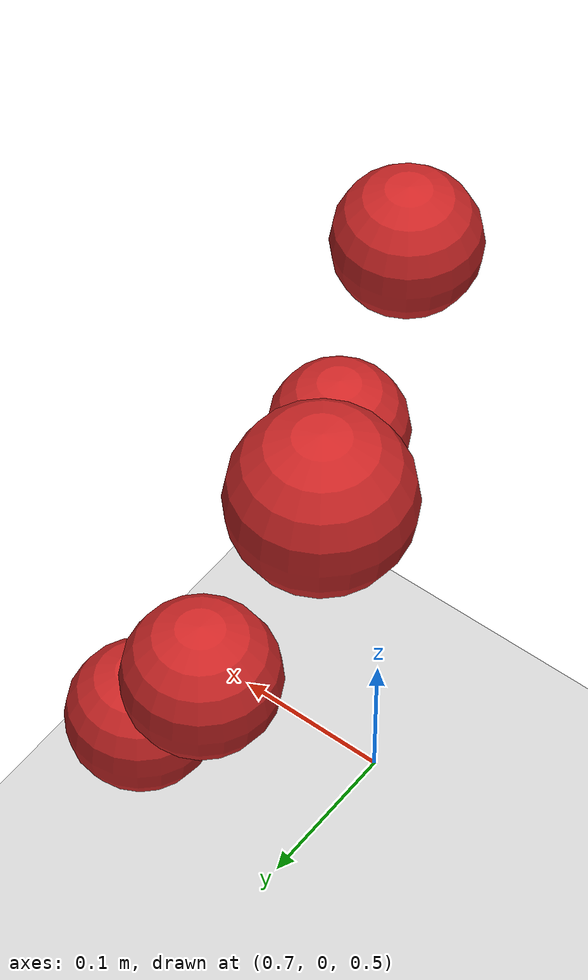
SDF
<sdf version="1.7">
 <world name="default">
  <light name="sun" type="directional">
   <pose>0 0 10 0 -0 0</pose>
   <diffuse>0.8 0.8 0.8 1</diffuse>
   <specular>0.2 0.2 0.2 1</specular>
   <attenuation>
    <range>1000</range>
    <constant>0.9</constant>
    <linear>0.01</linear>
    <quadratic>0.001</quadratic>
   </attenuation>
   <direction>-0.5 0.1 -0.9</direction>
   <spot><inner_angle>0</inner_angle><outer_angle>0</outer_angle><falloff>0</falloff></spot>
  </light>
  <model name="ground_plane">
   <static>1</static>
   <link name="link">
    <collision name="collision">
     <geometry><plane><normal>0 0 1</normal><size>100 100</size></plane></geometry>
     <surface>
      <contact><collide_bitmask>65535</collide_bitmask></contact>
      <friction><ode><mu>100</mu><mu2>50</mu2></ode></friction>
     </surface>
    </collision>
    <visual name="visual">
     <cast_shadows>0</cast_shadows>
     <geometry><plane><normal>0 0 1</normal><size>100 100</size></plane></geometry>
     <material>
      <script><uri>file://media/materials/scripts/gazebo.material</uri><name>Gazebo/Grey</name></script>
     </material>
    </visual>
   </link>
  </model>
  <gravity>0 0 -9.8</gravity>
  <magnetic_field>6e-06 2.3e-05 -4.2e-05</magnetic_field>
  <atmosphere type="adiabatic"/>
  <physics type="ode">
   <max_step_size>0.001</max_step_size>
   <real_time_factor>1</real_time_factor>
   <real_time_update_rate>1000</real_time_update_rate>
  </physics>
  <scene><ambient>0.4 0.4 0.4 1</ambient><background>0.7 0.7 0.7 1</background><shadows>1</shadows></scene>
  <audio><device>default</device></audio>
  <spherical_coordinates>
   <surface_model>EARTH_WGS84</surface_model>
   <latitude_deg>0</latitude_deg>
   <longitude_deg>0</longitude_deg>
   <elevation>0</elevation>
   <heading_deg>0</heading_deg>
  </spherical_coordinates>
  <model name="apple1_1">
   <link name="link_0">
    <inertial>
     <mass>0.00196361</mass>
     <inertia>
      <ixx>3.0792e-06</ixx>
      <ixy>0</ixy>
      <ixz>0</ixz>
      <iyy>3.0792e-06</iyy>
      <iyz>0</iyz>
      <izz>3.0792e-06</izz>
     </inertia>
    </inertial>
    <pose>1e-06 -3e-06 -0 0 -0 0</pose>
    <visual name="visual">
     <geometry><sphere><radius>0.0626125</radius></sphere></geometry>
     <material>
      <lighting>1</lighting>
      <script><uri>file://media/materials/scripts/gazebo.material</uri><name>Gazebo/Red</name></script>
      <shader type="pixel"/>
     </material>
    </visual>
    <collision name="collision">
     <geometry><sphere><radius>0.062612</radius></sphere></geometry>
     <surface>
      <friction>
       <ode><mu>1</mu><mu2>1</mu2><fdir1>0 0 0</fdir1><slip1>0</slip1><slip2>0</slip2></ode>
       <torsional>
        <coefficient>1</coefficient>
        <patch_radius>0</patch_radius>
        <surface_radius>0</surface_radius>
        <use_patch_radius>1</use_patch_radius>
        <ode><slip>0</slip></ode>
       </torsional>
      </friction>
      <bounce><restitution_coefficient>0</restitution_coefficient><threshold>1e+06</threshold></bounce>
      <contact>
       <collide_without_contact>0</collide_without_contact>
       <collide_without_contact_bitmask>1</collide_without_contact_bitmask>
       <collide_bitmask>1</collide_bitmask>
       <ode>
        <soft_cfm>0</soft_cfm>
        <soft_erp>0.2</soft_erp>
        <kp>1e+13</kp>
        <kd>1</kd>
        <max_vel>0.01</max_vel>
        <min_depth>0</min_depth>
       </ode>
       <bullet>
        <split_impulse>1</split_impulse>
        <split_impulse_penetration_threshold>-0.01</split_impulse_penetration_threshold>
        <soft_cfm>0</soft_cfm>
        <soft_erp>0.2</soft_erp>
        <kp>1e+13</kp>
        <kd>1</kd>
       </bullet>
      </contact>
     </surface>
    </collision>
   </link>
   <static>1</static>
   <pose>0.8 -0.074891 0.615 0 -0 0</pose>
  </model>
  <model name="apple1_1_clone">
   <link name="link_0">
    <inertial>
     <mass>0.00196361</mass>
     <inertia>
      <ixx>3.0792e-06</ixx>
      <ixy>0</ixy>
      <ixz>0</ixz>
      <iyy>3.0792e-06</iyy>
      <iyz>0</iyz>
      <izz>3.0792e-06</izz>
     </inertia>
    </inertial>
    <pose>1e-06 -3e-06 -0 0 -0 0</pose>
    <visual name="visual">
     <geometry><sphere><radius>0.0486681</radius></sphere></geometry>
     <material>
      <lighting>1</lighting>
      <script><uri>file://media/materials/scripts/gazebo.material</uri><name>Gazebo/Red</name></script>
      <shader type="pixel"/>
     </material>
    </visual>
    <collision name="collision">
     <geometry><sphere><radius>0.0486677</radius></sphere></geometry>
     <surface>
      <friction>
       <ode><mu>1</mu><mu2>1</mu2><fdir1>0 0 0</fdir1><slip1>0</slip1><slip2>0</slip2></ode>
       <torsional>
        <coefficient>1</coefficient>
        <patch_radius>0</patch_radius>
        <surface_radius>0</surface_radius>
        <use_patch_radius>1</use_patch_radius>
        <ode><slip>0</slip></ode>
       </torsional>
      </friction>
      <bounce><restitution_coefficient>0</restitution_coefficient><threshold>1e+06</threshold></bounce>
      <contact>
       <collide_without_contact>0</collide_without_contact>
       <collide_without_contact_bitmask>1</collide_without_contact_bitmask>
       <collide_bitmask>1</collide_bitmask>
       <ode>
        <soft_cfm>0</soft_cfm>
        <soft_erp>0.2</soft_erp>
        <kp>1e+13</kp>
        <kd>1</kd>
        <max_vel>0.01</max_vel>
        <min_depth>0</min_depth>
       </ode>
       <bullet>
        <split_impulse>1</split_impulse>
        <split_impulse_penetration_threshold>-0.01</split_impulse_penetration_threshold>
        <soft_cfm>0</soft_cfm>
        <soft_erp>0.2</soft_erp>
        <kp>1e+13</kp>
        <kd>1</kd>
       </bullet>
      </contact>
     </surface>
    </collision>
   </link>
   <static>1</static>
   <pose>0.746967 0.111368 0.674065 0 -0 0</pose>
  </model>
  <model name="apple1_1_clone_0">
   <link name="link_0">
    <inertial>
     <mass>0.00196361</mass>
     <inertia>
      <ixx>3.0792e-06</ixx>
      <ixy>0</ixy>
      <ixz>0</ixz>
      <iyy>3.0792e-06</iyy>
      <iyz>0</iyz>
      <izz>3.0792e-06</izz>
     </inertia>
    </inertial>
    <pose>1e-06 -3e-06 -0 0 -0 0</pose>
    <visual name="visual">
     <geometry><sphere><radius>0.0486681</radius></sphere></geometry>
     <material>
      <lighting>1</lighting>
      <script><uri>file://media/materials/scripts/gazebo.material</uri><name>Gazebo/Red</name></script>
      <shader type="pixel"/>
     </material>
    </visual>
    <collision name="collision">
     <geometry><sphere><radius>0.0486677</radius></sphere></geometry>
     <surface>
      <friction>
       <ode><mu>1</mu><mu2>1</mu2><fdir1>0 0 0</fdir1><slip1>0</slip1><slip2>0</slip2></ode>
       <torsional>
        <coefficient>1</coefficient>
        <patch_radius>0</patch_radius>
        <surface_radius>0</surface_radius>
        <use_patch_radius>1</use_patch_radius>
        <ode><slip>0</slip></ode>
       </torsional>
      </friction>
      <bounce><restitution_coefficient>0</restitution_coefficient><threshold>1e+06</threshold></bounce>
      <contact>
       <collide_without_contact>0</collide_without_contact>
       <collide_without_contact_bitmask>1</collide_without_contact_bitmask>
       <collide_bitmask>1</collide_bitmask>
       <ode>
        <soft_cfm>0</soft_cfm>
        <soft_erp>0.2</soft_erp>
        <kp>1e+13</kp>
        <kd>1</kd>
        <max_vel>0.01</max_vel>
        <min_depth>0</min_depth>
       </ode>
       <bullet>
        <split_impulse>1</split_impulse>
        <split_impulse_penetration_threshold>-0.01</split_impulse_penetration_threshold>
        <soft_cfm>0</soft_cfm>
        <soft_erp>0.2</soft_erp>
        <kp>1e+13</kp>
        <kd>1</kd>
       </bullet>
      </contact>
     </surface>
    </collision>
   </link>
   <static>1</static>
   <pose>0.829454 -0.199796 0.72434 0 -0 0</pose>
  </model>
  <model name="apple1_1_clone_0_clone">
   <link name="link_0">
    <inertial>
     <mass>0.00196361</mass>
     <inertia>
      <ixx>3.0792e-06</ixx>
      <ixy>0</ixy>
      <ixz>0</ixz>
      <iyy>3.0792e-06</iyy>
      <iyz>0</iyz>
      <izz>3.0792e-06</izz>
     </inertia>
    </inertial>
    <pose>1e-06 -3e-06 -0 0 -0 0</pose>
    <visual name="visual">
     <geometry><sphere><radius>0.0486681</radius></sphere></geometry>
     <material>
      <lighting>1</lighting>
      <script><uri>file://media/materials/scripts/gazebo.material</uri><name>Gazebo/Red</name></script>
      <shader type="pixel"/>
     </material>
    </visual>
    <collision name="collision">
     <geometry><sphere><radius>0.0486677</radius></sphere></geometry>
     <surface>
      <friction>
       <ode><mu>1</mu><mu2>1</mu2><fdir1>0 0 0</fdir1><slip1>0</slip1><slip2>0</slip2></ode>
       <torsional>
        <coefficient>1</coefficient>
        <patch_radius>0</patch_radius>
        <surface_radius>0</surface_radius>
        <use_patch_radius>1</use_patch_radius>
        <ode><slip>0</slip></ode>
       </torsional>
      </friction>
      <bounce><restitution_coefficient>0</restitution_coefficient><threshold>1e+06</threshold></bounce>
      <contact>
       <collide_without_contact>0</collide_without_contact>
       <collide_without_contact_bitmask>1</collide_without_contact_bitmask>
       <collide_bitmask>1</collide_bitmask>
       <ode>
        <soft_cfm>0</soft_cfm>
        <soft_erp>0.2</soft_erp>
        <kp>1e+13</kp>
        <kd>1</kd>
        <max_vel>0.01</max_vel>
        <min_depth>0</min_depth>
       </ode>
       <bullet>
        <split_impulse>1</split_impulse>
        <split_impulse_penetration_threshold>-0.01</split_impulse_penetration_threshold>
        <soft_cfm>0</soft_cfm>
        <soft_erp>0.2</soft_erp>
        <kp>1e+13</kp>
        <kd>1</kd>
       </bullet>
      </contact>
     </surface>
    </collision>
   </link>
   <static>1</static>
   <pose>0.831604 0.068907 0.516122 0 -0 0</pose>
  </model>
  <model name="apple1_1_clone_0_clone_clone">
   <link name="link_0">
    <inertial>
     <mass>0.00196361</mass>
     <inertia>
      <ixx>3.0792e-06</ixx>
      <ixy>0</ixy>
      <ixz>0</ixz>
      <iyy>3.0792e-06</iyy>
      <iyz>0</iyz>
      <izz>3.0792e-06</izz>
     </inertia>
    </inertial>
    <pose>1e-06 -3e-06 -0 0 -0 0</pose>
    <visual name="visual">
     <geometry><sphere><radius>0.0486681</radius></sphere></geometry>
     <material>
      <lighting>1</lighting>
      <script><uri>file://media/materials/scripts/gazebo.material</uri><name>Gazebo/Red</name></script>
      <shader type="pixel"/>
     </material>
    </visual>
    <collision name="collision">
     <geometry><sphere><radius>0.0486677</radius></sphere></geometry>
     <surface>
      <friction>
       <ode><mu>1</mu><mu2>1</mu2><fdir1>0 0 0</fdir1><slip1>0</slip1><slip2>0</slip2></ode>
       <torsional>
        <coefficient>1</coefficient>
        <patch_radius>0</patch_radius>
        <surface_radius>0</surface_radius>
        <use_patch_radius>1</use_patch_radius>
        <ode><slip>0</slip></ode>
       </torsional>
      </friction>
      <bounce><restitution_coefficient>0</restitution_coefficient><threshold>1e+06</threshold></bounce>
      <contact>
       <collide_without_contact>0</collide_without_contact>
       <collide_without_contact_bitmask>1</collide_without_contact_bitmask>
       <collide_bitmask>1</collide_bitmask>
       <ode>
        <soft_cfm>0</soft_cfm>
        <soft_erp>0.2</soft_erp>
        <kp>1e+13</kp>
        <kd>1</kd>
        <max_vel>0.01</max_vel>
        <min_depth>0</min_depth>
       </ode>
       <bullet>
        <split_impulse>1</split_impulse>
        <split_impulse_penetration_threshold>-0.01</split_impulse_penetration_threshold>
        <soft_cfm>0</soft_cfm>
        <soft_erp>0.2</soft_erp>
        <kp>1e+13</kp>
        <kd>1</kd>
       </bullet>
      </contact>
     </surface>
    </collision>
   </link>
   <static>1</static>
   <pose>0.8735 -0.192295 0.516122 0 -0 0</pose>
  </model>
 </world>
</sdf>
